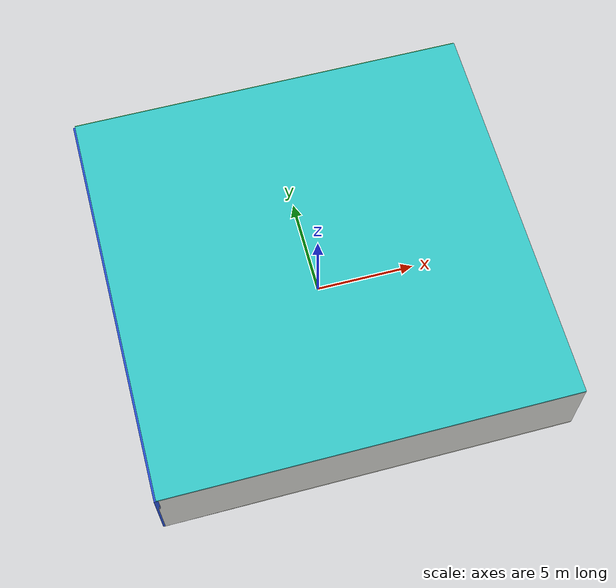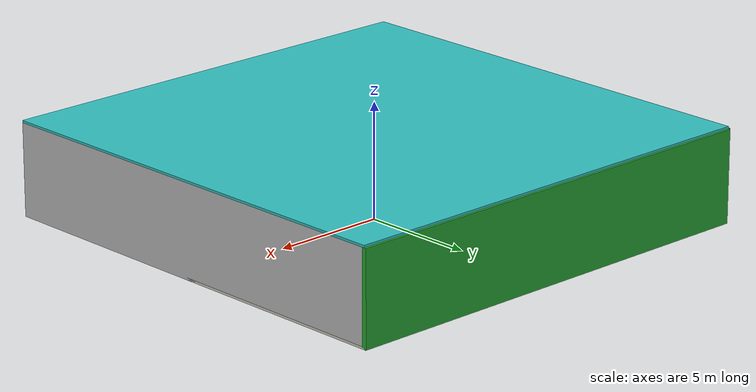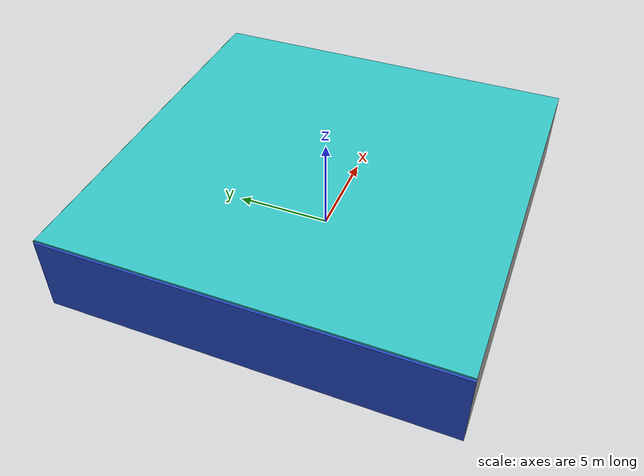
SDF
<sdf version="1.4">
 <world name="default">
  <physics type="ode">
   <max_step_size>0.001</max_step_size>
   <real_time_factor>1</real_time_factor>
   <real_time_update_rate>1000</real_time_update_rate>
   <gravity>0 0 -9.8</gravity>
  </physics>
  <scene><ambient>0.4 0.4 0.4 1</ambient><background>0.7 0.7 0.7 1</background><shadows>1</shadows></scene>
  <model name="Surrounding">
   <static>1</static>
   <link name="Ceiling">
    <collision name="Ceiling_Collision"><geometry><box><size>20 20 0.1</size></box></geometry></collision>
    <visual name="Ceiling_Visual">
     <geometry><box><size>20 20 0.1</size></box></geometry>
     <material>
      <script><uri>file://media/materials/scripts/gazebo.material</uri><name>Gazebo/Turquoise</name></script>
     </material>
    </visual>
    <pose>0 0 4.05 0 0 0</pose>
   </link>
   <link name="Wall_South">
    <collision name="Wall_South_Collision">
     <geometry><box><size>20 0 4</size></box></geometry>
     <pose>0 0 2 0 -0 0</pose>
    </collision>
    <visual name="Wall_South_Visual">
     <pose>0 0 2 0 -0 0</pose>
     <geometry><box><size>20 0 4</size></box></geometry>
     <material>
      <script><uri>file://media/materials/scripts/gazebo.material</uri><name>Gazebo/CeilingTiled</name></script>
     </material>
    </visual>
    <velocity_decay><linear>0</linear><angular>0</angular></velocity_decay>
    <pose>0 -10 0 0 -0 0</pose>
   </link>
   <link name="Wall_East">
    <collision name="Wall_21_Collision">
     <geometry><box><size>20 0 4</size></box></geometry>
     <pose>0 0 2 0 -0 0</pose>
    </collision>
    <visual name="Wall_21_Visual">
     <pose>0 0 2 0 -0 0</pose>
     <geometry><box><size>20 0 4</size></box></geometry>
     <material>
      <script><uri>file://media/materials/scripts/gazebo.material</uri><name>Gazebo/LightOn</name></script>
     </material>
    </visual>
    <velocity_decay><linear>0</linear><angular>0</angular></velocity_decay>
    <pose>10 0 0 0 -0 1.5708</pose>
   </link>
   <link name="Wall_North">
    <collision name="Wall_22_Collision">
     <geometry><box><size>20 0.2 4</size></box></geometry>
     <pose>0 0 2 0 -0 0</pose>
    </collision>
    <visual name="Wall_22_Visual">
     <pose>0 0 2 0 -0 0</pose>
     <geometry><box><size>20 0.2 4</size></box></geometry>
     <material>
      <script><uri>file://media/materials/scripts/gazebo.material</uri><name>Gazebo/Green</name></script>
     </material>
    </visual>
    <velocity_decay><linear>0</linear><angular>0</angular></velocity_decay>
    <pose>0 10 0 0 -0 0</pose>
   </link>
   <link name="Wall_West">
    <collision name="Wall_23_Collision">
     <geometry><box><size>20 0.2 4</size></box></geometry>
     <pose>0 0 2 0 -0 0</pose>
    </collision>
    <visual name="Wall_23_Visual">
     <pose>0 0 2 0 -0 0</pose>
     <geometry><box><size>20 0.2 4</size></box></geometry>
     <material>
      <script><uri>file://media/materials/scripts/gazebo.material</uri><name>Gazebo/Blue</name></script>
     </material>
    </visual>
    <velocity_decay><linear>0</linear><angular>0</angular></velocity_decay>
    <pose>-10 0 0 0 0 -1.5708</pose>
   </link>
   <link name="Ground_link">
    <collision name="collision">
     <pose>0 0 .05 0 -0 0</pose>
     <geometry><box><size>20 20 0.1</size></box></geometry>
    </collision>
    <visual name="visual">
     <pose>0 0 .05 0 -0 0</pose>
     <geometry><box><size>20 20 0.1</size></box></geometry>
     <material>
      <script><uri>file://media/materials/scripts/gazebo.material</uri><name>Gazebo/PaintedWall</name></script>
     </material>
    </visual>
   </link>
   <static>1</static>
  </model>
  <spherical_coordinates>
   <surface_model>EARTH_WGS84</surface_model>
   <latitude_deg>0</latitude_deg>
   <longitude_deg>0</longitude_deg>
   <elevation>0</elevation>
   <heading_deg>0</heading_deg>
  </spherical_coordinates>
  <light name="lightball_0" type="diffuse">
   <diffuse>0.8 0.8 0.8 1</diffuse>
   <specular>0.2 0.2 0.2 1</specular>
   <attenuation>
    <range>100</range>
    <constant>0.7</constant>
    <linear>0.01</linear>
    <quadratic>0.001</quadratic>
   </attenuation>
   <direction>-0.5 0.1 -0.9</direction>
   <pose>6.0768961531 2.70927002709 3.1878585038 0 0 0</pose>
  </light>
  <light name="lightball_1" type="diffuse">
   <diffuse>0.8 0.8 0.8 1</diffuse>
   <specular>0.2 0.2 0.2 1</specular>
   <attenuation>
    <range>100</range>
    <constant>0.7</constant>
    <linear>0.01</linear>
    <quadratic>0.001</quadratic>
   </attenuation>
   <direction>-0.5 0.1 -0.9</direction>
   <pose>-9.63623127115 6.47060690974 2.97155785316 0 0 0</pose>
  </light>
  <light name="lightball_2" type="diffuse">
   <diffuse>0.8 0.8 0.8 1</diffuse>
   <specular>0.2 0.2 0.2 1</specular>
   <attenuation>
    <range>100</range>
    <constant>0.7</constant>
    <linear>0.01</linear>
    <quadratic>0.001</quadratic>
   </attenuation>
   <direction>-0.5 0.1 -0.9</direction>
   <pose>-2.31018479821 -4.68053890763 3.66250819831 0 0 0</pose>
  </light>
  <light name="lightball_3" type="diffuse">
   <diffuse>0.8 0.8 0.8 1</diffuse>
   <specular>0.2 0.2 0.2 1</specular>
   <attenuation>
    <range>100</range>
    <constant>0.7</constant>
    <linear>0.01</linear>
    <quadratic>0.001</quadratic>
   </attenuation>
   <direction>-0.5 0.1 -0.9</direction>
   <pose>-7.45276779672 5.0117029321 3.09215330096 0 0 0</pose>
  </light>
  <light name="lightball_4" type="diffuse">
   <diffuse>0.8 0.8 0.8 1</diffuse>
   <specular>0.2 0.2 0.2 1</specular>
   <attenuation>
    <range>100</range>
    <constant>0.7</constant>
    <linear>0.01</linear>
    <quadratic>0.001</quadratic>
   </attenuation>
   <direction>-0.5 0.1 -0.9</direction>
   <pose>-8.67913356591 9.97486356598 3.27171410267 0 0 0</pose>
  </light>
  <light name="lightball_5" type="diffuse">
   <diffuse>0.8 0.8 0.8 1</diffuse>
   <specular>0.2 0.2 0.2 1</specular>
   <attenuation>
    <range>100</range>
    <constant>0.7</constant>
    <linear>0.01</linear>
    <quadratic>0.001</quadratic>
   </attenuation>
   <direction>-0.5 0.1 -0.9</direction>
   <pose>-5.91680310173 0.582152449114 3.74951113299 0 0 0</pose>
  </light>
  <light name="lightball_6" type="diffuse">
   <diffuse>0.8 0.8 0.8 1</diffuse>
   <specular>0.2 0.2 0.2 1</specular>
   <attenuation>
    <range>100</range>
    <constant>0.7</constant>
    <linear>0.01</linear>
    <quadratic>0.001</quadratic>
   </attenuation>
   <direction>-0.5 0.1 -0.9</direction>
   <pose>-7.24501702319 -0.351916845144 0.918111176396 0 0 0</pose>
  </light>
  <light name="lightball_7" type="diffuse">
   <diffuse>0.8 0.8 0.8 1</diffuse>
   <specular>0.2 0.2 0.2 1</specular>
   <attenuation>
    <range>100</range>
    <constant>0.7</constant>
    <linear>0.01</linear>
    <quadratic>0.001</quadratic>
   </attenuation>
   <direction>-0.5 0.1 -0.9</direction>
   <pose>6.17265769614 -5.07393974826 2.21627808026 0 0 0</pose>
  </light>
  <light name="lightball_8" type="diffuse">
   <diffuse>0.8 0.8 0.8 1</diffuse>
   <specular>0.2 0.2 0.2 1</specular>
   <attenuation>
    <range>100</range>
    <constant>0.7</constant>
    <linear>0.01</linear>
    <quadratic>0.001</quadratic>
   </attenuation>
   <direction>-0.5 0.1 -0.9</direction>
   <pose>-9.1564228548 8.69782535907 0.853013638086 0 0 0</pose>
  </light>
  <light name="lightball_9" type="diffuse">
   <diffuse>0.8 0.8 0.8 1</diffuse>
   <specular>0.2 0.2 0.2 1</specular>
   <attenuation>
    <range>100</range>
    <constant>0.7</constant>
    <linear>0.01</linear>
    <quadratic>0.001</quadratic>
   </attenuation>
   <direction>-0.5 0.1 -0.9</direction>
   <pose>-1.39269074495 -7.07666708799 1.81623784426 0 0 0</pose>
  </light>
  <light name="lightball_10" type="diffuse">
   <diffuse>0.8 0.8 0.8 1</diffuse>
   <specular>0.2 0.2 0.2 1</specular>
   <attenuation>
    <range>100</range>
    <constant>0.7</constant>
    <linear>0.01</linear>
    <quadratic>0.001</quadratic>
   </attenuation>
   <direction>-0.5 0.1 -0.9</direction>
   <pose>-2.62758632065 -5.34236048761 3.81825585865 0 0 0</pose>
  </light>
  <light name="lightball_11" type="diffuse">
   <diffuse>0.8 0.8 0.8 1</diffuse>
   <specular>0.2 0.2 0.2 1</specular>
   <attenuation>
    <range>100</range>
    <constant>0.7</constant>
    <linear>0.01</linear>
    <quadratic>0.001</quadratic>
   </attenuation>
   <direction>-0.5 0.1 -0.9</direction>
   <pose>1.92355368585 6.79162553776 2.23741741906 0 0 0</pose>
  </light>
  <include><uri>model://cabinet</uri><pose>-6.99575938964 8.26279659416 0 0 0 2.72631532727</pose></include>
  <include><uri>model://cabinet</uri><pose>-5.52457360695 -8.5088161602 0 0 0 2.3998071374</pose></include>
  <include><uri>model://cabinet</uri><pose>-4.82718596593 -4.81165923089 0 0 0 2.715790426</pose></include>
  <include>
   <uri>model://textured_shapes</uri>
   <pose>2.24624056105 -6.42420785939 0 0 0 1.54779002388</pose>
  </include>
  <include>
   <uri>model://textured_shapes</uri>
   <pose>0.35717668922 -4.34056900486 0 0 0 0.992212122936</pose>
  </include>
  <include><uri>model://cabinet</uri><pose>4.77241596993 -5.13505397418 0 0 0 2.4922617559</pose></include>
  <include>
   <uri>model://construction_cone</uri>
   <pose>3.52941242443 0.925343753376 0 0 0 3.01251199144</pose>
  </include>
  <include><uri>model://table</uri><pose>8.06931352989 -7.78056616533 0 0 0 1.61368381008</pose></include>
 </world>
</sdf>

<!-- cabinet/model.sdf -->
<sdf version="1.5">
  <model name="cabinet">
    <static>true</static>
    <link name="cabinet_bottom_plate">
      <inertial>
        <pose>0 0 -1 0 0 0</pose>
        <inertia>
          <ixx>2.050000</ixx>
          <ixy>0</ixy>
          <ixz>0</ixz>
          <iyy>2.050000</iyy>
          <iyz>0</iyz>
          <izz>2.050000</izz>
        </inertia>
        <mass>25.000000</mass>
      </inertial>
      <collision name="cabinet_bottom_plate_geom">
        <pose>0 0 0.010000 0 0 0</pose>
        <geometry>
          <box>
            <size>0.450000 0.450000 0.020000</size>
          </box>
        </geometry>
      </collision>
      <visual name="cabinet_bottom_plate_geom_visual">
        <pose>0 0 0.010000 0 0 0</pose>
        <geometry>
          <box>
            <size>0.450000 0.450000 0.020000</size>
          </box>
        </geometry>
        <material>
          <script>
            <uri>model://media/materials/scripts/gazebo.material</uri>
            <name>Gazebo/Wood</name>
          </script>
        </material>
      </visual>
      <collision name="cabinet_bottom_plate_geom_cabinet_back_plate">
        <pose>0.235000 0 0.510000 0 0 0</pose>
        <geometry>
          <box>
            <size>0.020000 0.450000 1.020000</size>
          </box>
        </geometry>
      </collision>
      <visual name="cabinet_bottom_plate_geom_cabinet_back_plate_visual">
        <pose>0.235000 0 0.510000 0 0 0</pose>
        <geometry>
          <box>
            <size>0.020000 0.450000 1.020000</size>
          </box>
        </geometry>
        <material>
          <script>
            <uri>model://media/materials/scripts/gazebo.material</uri>
            <name>Gazebo/Wood</name>
          </script>
        </material>
      </visual>
      <collision name="cabinet_bottom_plate_geom_cabinet_left_plate">
        <pose>0 0.235000 0.510000 0 0 0</pose>
        <geometry>
          <box>
            <size>0.450000 0.020000 1.020000</size>
          </box>
        </geometry>
      </collision>
      <visual name="cabinet_bottom_plate_geom_cabinet_left_plate_visual">
        <pose>0 0.235000 0.510000 0 0 0</pose>
        <geometry>
          <box>
            <size>0.450000 0.020000 1.020000</size>
          </box>
        </geometry>
        <material>
          <script>
            <uri>model://media/materials/scripts/gazebo.material</uri>
            <name>Gazebo/Wood</name>
          </script>
        </material>
      </visual>
      <collision name="cabinet_bottom_plate_geom_cabinet_middle_plate">
        <pose>0 0 0.510000 0 0 0</pose>
        <geometry>
          <box>
            <size>0.450000 0.450000 0.020000</size>
          </box>
        </geometry>
      </collision>
      <visual name="cabinet_bottom_plate_geom_cabinet_middle_plate_visual">
        <pose>0 0 0.510000 0 0 0</pose>
        <geometry>
          <box>
            <size>0.450000 0.450000 0.020000</size>
          </box>
        </geometry>
        <material>
          <script>
            <uri>model://media/materials/scripts/gazebo.material</uri>
            <name>Gazebo/Wood</name>
          </script>
        </material>
      </visual>
      <collision name="cabinet_bottom_plate_geom_cabinet_right_plate">
        <pose>0 -0.235000 0.510000 0 0 0</pose>
        <geometry>
          <box>
            <size>0.450000 0.020000 1.020000</size>
          </box>
        </geometry>
      </collision>
      <visual name="cabinet_bottom_plate_geom_cabinet_right_plate_visual">
        <pose>0 -0.235000 0.510000 0 0 0</pose>
        <geometry>
          <box>
            <size>0.450000 0.020000 1.020000</size>
          </box>
        </geometry>
        <material>
          <script>
            <uri>model://media/materials/scripts/gazebo.material</uri>
            <name>Gazebo/Wood</name>
          </script>
        </material>
      </visual>
      <collision name="cabinet_bottom_plate_geom_cabinet_top_plate">
        <pose>0 0 1.010000 0 0 0</pose>
        <geometry>
          <box>
            <size>0.450000 0.450000 0.020000</size>
          </box>
        </geometry>
      </collision>
      <visual name="cabinet_bottom_plate_geom_cabinet_top_plate_visual">
        <pose>0 0 1.010000 0 0 0</pose>
        <geometry>
          <box>
            <size>0.450000 0.450000 0.020000</size>
          </box>
        </geometry>
        <material>
          <script>
            <uri>model://media/materials/scripts/gazebo.material</uri>
            <name>Gazebo/Wood</name>
          </script>
        </material>
      </visual>
    </link>
  </model>
</sdf>

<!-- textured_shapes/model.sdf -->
<sdf version="1.6">
  <model name="textured_shapes">
    <pose>0 0 0.5 0 0 0</pose>
    <link name="box">
      <pose>0 -1.5 0 0 0 0</pose>
      <collision name="collision">
        <geometry>
          <box>
            <size>1 1 1</size>
          </box>
        </geometry>
      </collision>
      <visual name="visual">
        <geometry>
          <box>
            <size>1 1 1</size>
          </box>
        </geometry>
        <material>
          <script>
            <uri>model://../model_source/models/textured_shapes/materials/scripts</uri>
            <uri>model://../model_source/models/textured_shapes/materials/textures</uri>
            <name>TexturedShape/Squares</name>
          </script>
        </material>
      </visual>
    </link>
    <link name="sphere">
      <collision name="collision">
        <geometry>
          <sphere>
            <radius>0.5</radius>
          </sphere>
        </geometry>
      </collision>
      <visual name="visual">
        <geometry>
          <sphere>
            <radius>0.5</radius>
          </sphere>
        </geometry>
        <material>
          <script>
            <uri>model://../model_source/models/textured_shapes/materials/scripts</uri>
            <uri>model://../model_source/models/textured_shapes/materials/textures</uri>
            <name>TexturedShape/Squares</name>
          </script>
        </material>
      </visual>
    </link>
    <link name="cylinder">
      <pose>0 1.5 0 0 0 0</pose>
      <collision name="collision">
        <geometry>
          <cylinder>
            <radius>0.5</radius>
            <length>1</length>
          </cylinder>
        </geometry>
      </collision>
      <visual name="visual">
        <geometry>
          <cylinder>
            <radius>0.5</radius>
            <length>1</length>
          </cylinder>
        </geometry>
        <material>
          <script>
            <uri>model://../model_source/models/textured_shapes/materials/scripts</uri>
            <uri>model://../model_source/models/textured_shapes/materials/textures</uri>
            <name>TexturedShape/Squares</name>
          </script>
        </material>
      </visual>
    </link>
  </model>
</sdf>

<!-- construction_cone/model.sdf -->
<sdf version="1.5">
  <model name="Construction Cone">
    <link name="link">
      <collision name="collision">
        <geometry>
          <mesh>
            <scale>10 10 10</scale>
            <uri>file://isr-testbed/construction_cone/meshes/construction_cone.dae</uri>
          </mesh>
        </geometry>
      </collision>
      <visual name="visual">
        <geometry>
          <mesh>
            <scale>10 10 10</scale>
            <uri>file://isr-testbed/construction_cone/meshes/construction_cone.dae</uri>
          </mesh>
        </geometry>
      </visual>
    </link>
  </model>
</sdf>

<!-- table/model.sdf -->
<sdf version="1.5">
  <model name="table">
    <static>true</static>
    <link name="link">
      <collision name="surface">
        <pose>0 0 1.0 0 0 0</pose>
        <geometry>
          <box>
            <size>1.5 0.8 0.03</size>
          </box>
        </geometry>
        <surface>
          <friction>
            <ode>
              <mu>0.6</mu>
              <mu2>0.6</mu2>
            </ode>
          </friction>
        </surface>
      </collision>
      <visual name="visual1">
        <pose>0 0 1.0 0 0 0</pose>
        <geometry>
          <box>
            <size>1.5 0.8 0.03</size>
          </box>
        </geometry>
        <material>
          <script>
            <uri>model://media/materials/scripts/gazebo.material</uri>
            <name>Gazebo/Wood</name>
          </script>
        </material>
      </visual>
      <collision name="front_left_leg">
        <pose>0.68 0.38 0.5 0 0 0</pose>
        <geometry>
          <cylinder>
            <radius>0.02</radius>
            <length>1.0</length>
          </cylinder>
        </geometry>
      </collision>
      <visual name="front_left_leg">
        <pose>0.68 0.38 0.5 0 0 0</pose>
        <geometry>
          <cylinder>
            <radius>0.02</radius>
            <length>1.0</length>
          </cylinder>
        </geometry>
        <material>
          <script>
            <uri>model://media/materials/scripts/gazebo.material</uri>
            <name>Gazebo/Grey</name>
          </script>
        </material>
      </visual>
      <collision name="front_right_leg">
        <pose>0.68 -0.38 0.5 0 0 0</pose>
        <geometry>
          <cylinder>
            <radius>0.02</radius>
            <length>1.0</length>
          </cylinder>
        </geometry>
      </collision>
      <visual name="front_right_leg">
        <pose>0.68 -0.38 0.5 0 0 0</pose>
        <geometry>
          <cylinder>
            <radius>0.02</radius>
            <length>1.0</length>
          </cylinder>
        </geometry>
        <material>
          <script>
            <uri>model://media/materials/scripts/gazebo.material</uri>
            <name>Gazebo/Grey</name>
          </script>
        </material>
      </visual>
      <collision name="back_right_leg">
        <pose>-0.68 -0.38 0.5 0 0 0</pose>
        <geometry>
          <cylinder>
            <radius>0.02</radius>
            <length>1.0</length>
          </cylinder>
        </geometry>
      </collision>
      <visual name="back_right_leg">
        <pose>-0.68 -0.38 0.5 0 0 0</pose>
        <geometry>
          <cylinder>
            <radius>0.02</radius>
            <length>1.0</length>
          </cylinder>
        </geometry>
        <material>
          <script>
            <uri>model://media/materials/scripts/gazebo.material</uri>
            <name>Gazebo/Grey</name>
          </script>
        </material>
      </visual>
      <collision name="back_left_leg">
        <pose>-0.68 0.38 0.5 0 0 0</pose>
        <geometry>
          <cylinder>
            <radius>0.02</radius>
            <length>1.0</length>
          </cylinder>
        </geometry>
      </collision>
      <visual name="back_left_leg">
        <pose>-0.68 0.38 0.5 0 0 0</pose>
        <geometry>
          <cylinder>
            <radius>0.02</radius>
            <length>1.0</length>
          </cylinder>
        </geometry>
        <material>
          <script>
            <uri>model://media/materials/scripts/gazebo.material</uri>
            <name>Gazebo/Grey</name>
          </script>
        </material>
      </visual>
    </link>
  </model>
</sdf>
